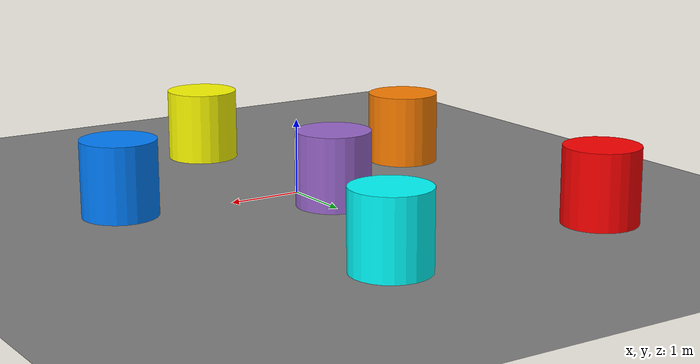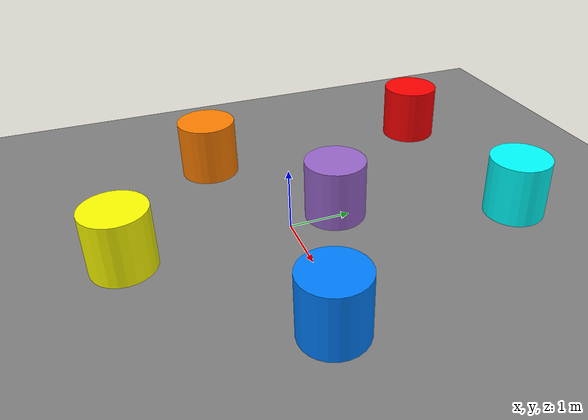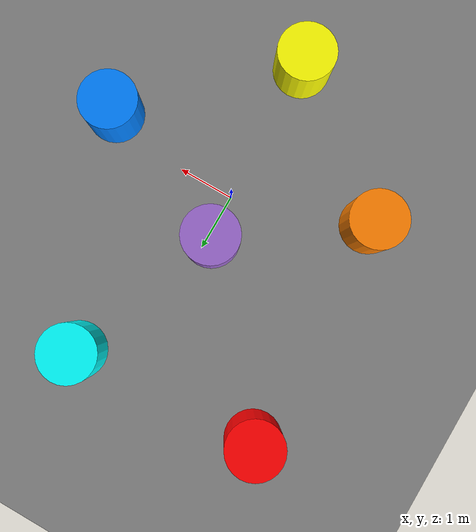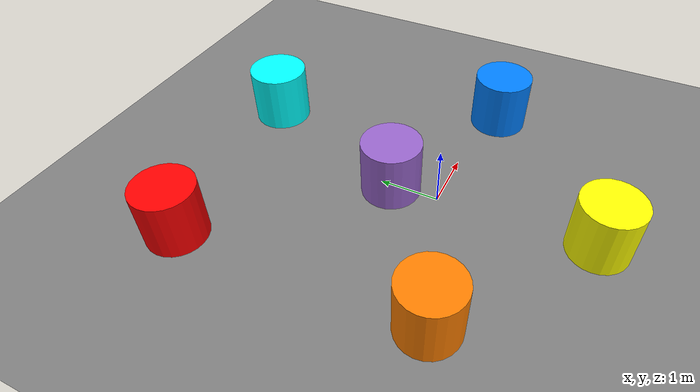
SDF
<sdf version='1.6'>
  <world name='default'>
    <light name='sun' type='directional'>
      <cast_shadows>1</cast_shadows>
      <pose frame=''>0 0 10 0 -0 0</pose>
      <diffuse>0.8 0.8 0.8 1</diffuse>
      <specular>0.2 0.2 0.2 1</specular>
      <attenuation>
        <range>1000</range>
        <constant>0.9</constant>
        <linear>0.01</linear>
        <quadratic>0.001</quadratic>
      </attenuation>
      <direction>-0.5 0.1 -0.9</direction>
    </light>
    <model name='ground_plane'>
      <static>1</static>
      <link name='link'>
        <collision name='collision'>
          <geometry>
            <plane>
              <normal>0 0 1</normal>
              <size>100 100</size>
            </plane>
          </geometry>
          <surface>
            <contact>
              <collide_bitmask>65535</collide_bitmask>
            </contact>
            <friction>
              <ode>
                <mu>100</mu>
                <mu2>50</mu2>
              </ode>
            </friction>
          </surface>
        </collision>
        <visual name='visual'>
          <cast_shadows>0</cast_shadows>
          <geometry>
            <plane>
              <normal>0 0 1</normal>
              <size>100 100</size>
            </plane>
          </geometry>
          <material>
            <ambient>0.5 0.5 0.5 1</ambient>
            <diffuse>0.5 0.5 0.5 1</diffuse>
            <specular>0.1 0.1 0.1 1</specular>
            <emissive>0 0 0 1</emissive>
          </material>
        </visual>
      </link>
    </model>

    <model name='unit_cylinder'>
      <static>1</static>
      <pose>-0.077295 0.8 0.5 0 0 0</pose>
      <link name='link'>
        <visual name='visual'>
          <geometry>
            <cylinder><radius>0.5</radius><length>1</length></cylinder>
          </geometry>
          <material>
            <ambient>0.6 0.4 0.8 1</ambient>
            <diffuse>0.6 0.4 0.8 1</diffuse>
            <specular>0.1 0.1 0.1 1</specular>
            <emissive>0 0 0 1</emissive>
          </material>
        </visual>
      </link>
    </model>

    <model name='unit_cylinder_0'>
      <static>1</static>
      <pose>-2.29225 -0.780573 0.5 0 0 0</pose>
      <link name='link'>
        <visual name='visual'>
          <geometry>
            <cylinder><radius>0.5</radius><length>1</length></cylinder>
          </geometry>
          <material>
            <ambient>1.0 0.5 0.0 1</ambient>
            <diffuse>1.0 0.5 0.0 1</diffuse>
            <specular>0.1 0.1 0.1 1</specular>
            <emissive>0 0 0 1</emissive>
          </material>
        </visual>
      </link>
    </model>

    <model name='unit_cylinder_1'>
      <static>1</static>
      <pose>0.071628 -2.58063 0.5 0 0 0</pose>
      <link name='link'>
        <visual name='visual'>
          <geometry>
            <cylinder><radius>0.5</radius><length>1</length></cylinder>
          </geometry>
          <material>
            <ambient>1.0 1.0 0.0 1</ambient>
            <diffuse>1.0 1.0 0.0 1</diffuse>
            <specular>0.1 0.1 0.1 1</specular>
            <emissive>0 0 0 1</emissive>
          </material>
        </visual>
      </link>
    </model>

    <model name='unit_cylinder_2'>
      <static>1</static>
      <pose>2.47728 -0.262102 0.5 0 0 0</pose>
      <link name='link'>
        <visual name='visual'>
          <geometry>
            <cylinder><radius>0.5</radius><length>1</length></cylinder>
          </geometry>
          <material>
            <ambient>0.0 0.5 1.0 1</ambient>
            <diffuse>0.0 0.5 1.0 1</diffuse>
            <specular>0.1 0.1 0.1 1</specular>
            <emissive>0 0 0 1</emissive>
          </material>
        </visual>
      </link>
    </model>

    <model name='unit_cylinder_3'>
      <static>1</static>
      <pose>-2.39941 3.37612 0.5 0 0 0</pose>
      <link name='link'>
        <visual name='visual'>
          <geometry>
            <cylinder><radius>0.5</radius><length>1</length></cylinder>
          </geometry>
          <material>
            <ambient>1.0 0.0 0.0 1</ambient>
            <diffuse>1.0 0.0 0.0 1</diffuse>
            <specular>0.1 0.1 0.1 1</specular>
            <emissive>0 0 0 1</emissive>
          </material>
        </visual>
      </link>
    </model>

    <model name='unit_cylinder_4'>
      <static>1</static>
      <pose>0.933695 3.57926 0.5 0 0 0</pose>
      <link name='link'>
        <visual name='visual'>
          <geometry>
            <cylinder><radius>0.5</radius><length>1</length></cylinder>
          </geometry>
          <material>
            <ambient>0.0 1.0 1.0 1</ambient>
            <diffuse>0.0 1.0 1.0 1</diffuse>
            <specular>0.1 0.1 0.1 1</specular>
            <emissive>0 0 0 1</emissive>
          </material>
        </visual>
      </link>
    </model>
  </world>
</sdf>
